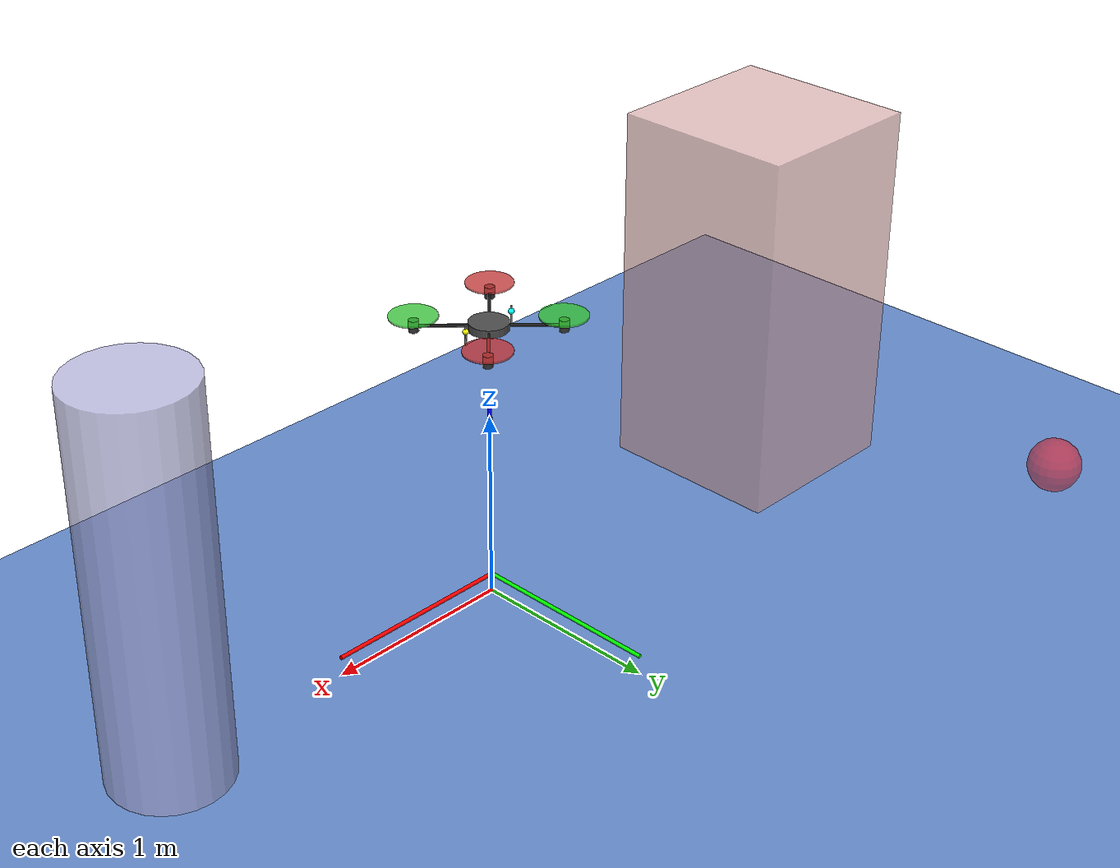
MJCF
<?xml version="1.0" ?>
<mujoco model="quadrotor">

  <!-- 仿真选项 -->
  <option timestep="0.005" iterations="50" tolerance="1e-10" cone="elliptic">
    <flag contact="enable" energy="enable"/>
  </option>

  <!-- 物理参数 -->
  <size nconmax="100" njmax="200"/>

  <!-- 资产定义 -->
  <asset>
    <!-- 纹理 -->
    <texture name="skybox" type="skybox" builtin="gradient" rgb1="0.6 0.8 1.0" rgb2="0.2 0.3 0.6"/>
    <texture name="ground" type="2d" builtin="checker" rgb1="0.8 0.9 0.8" rgb2="0.6 0.8 0.6" width="512" height="512"/>
    <texture name="metal" type="2d" builtin="flat" rgb1="0.5 0.5 0.5" rgb2="0.1 0.1 0.1"/>
    <texture name="propeller" type="2d" builtin="flat" rgb1="0.9 0.2 0.2" rgb2="0.5 0.1 0.1"/>

    <!-- 材质 -->
    <material name="sky" texture="skybox" texuniform="true"/>
    <material name="ground_mat" texture="ground" texuniform="true" texrepeat="10 10"/>
    <material name="metal_mat" texture="metal" shininess="0.5" specular="0.5"/>
    <material name="propeller_mat" texture="propeller" shininess="0.3" specular="0.2"/>
    <material name="red" rgba="0.8 0.2 0.2 1"/>
    <material name="green" rgba="0.2 0.8 0.2 1"/>
    <material name="blue" rgba="0.2 0.2 0.8 1"/>
    <material name="black" rgba="0.1 0.1 0.1 1"/>
    <material name="white" rgba="1 1 1 1"/>

    <!-- 网格 -->
    <mesh name="quad_body" file="quad_body.stl" scale="0.01 0.01 0.01"/>
    <mesh name="propeller_blade" file="propeller_blade.stl" scale="0.01 0.01 0.01"/>
  </asset>

  <!-- 世界定义 -->
  <worldbody>
    <!-- 光源 -->
    <light name="top_light" pos="0 0 10" dir="0 0 -1" directional="true" diffuse="0.8 0.8 0.8"/>
    <light name="front_light" pos="5 0 5" dir="-1 0 -1" directional="true" diffuse="0.5 0.5 0.5"/>

    <!-- 天空和地面 -->
    <geom name="sky" type="plane" pos="0 0 0" size="0 0 0" material="sky"/>
    <geom name="ground" type="plane" pos="0 0 0" size="20 20 0.1" material="ground_mat" condim="3" friction="1 0.005 0.0001"/>

    <!-- 参考坐标系 -->
    <geom name="origin_x" type="cylinder" fromto="0 0 0.1 1 0 0.1" size="0.01" rgba="1 0 0 1"/>
    <geom name="origin_y" type="cylinder" fromto="0 0 0.1 0 1 0.1" size="0.01" rgba="0 1 0 1"/>
    <geom name="origin_z" type="cylinder" fromto="0 0 0.1 0 0 1.1" size="0.01" rgba="0 0 1 1"/>

    <!-- 四旋翼无人机主体 -->
    <body name="quadrotor" pos="0 0 1.5" euler="0 0 0">
      <!-- 自由关节 (6自由度) -->
      <freejoint name="quad_free_joint"/>

      <!-- 主体框架 -->
      <geom name="center_body" type="cylinder" size="0.1 0.02" rgba="0.3 0.3 0.3 1" mass="0.3"/>
      <geom name="arm_front_right" type="capsule" fromto="0 0 0 0.25 0.25 0" size="0.008" rgba="0.1 0.1 0.1 1" mass="0.05"/>
      <geom name="arm_front_left" type="capsule" fromto="0 0 0 0.25 -0.25 0" size="0.008" rgba="0.1 0.1 0.1 1" mass="0.05"/>
      <geom name="arm_back_left" type="capsule" fromto="0 0 0 -0.25 -0.25 0" size="0.008" rgba="0.1 0.1 0.1 1" mass="0.05"/>
      <geom name="arm_back_right" type="capsule" fromto="0 0 0 -0.25 0.25 0" size="0.008" rgba="0.1 0.1 0.1 1" mass="0.05"/>

      <!-- 电机和旋翼 (前右) -->
      <body name="motor_front_right" pos="0.25 0.25 0">
        <geom name="motor_housing_front_right" type="cylinder" size="0.025 0.03" rgba="0.2 0.2 0.2 1" mass="0.05"/>

        <body name="rotor_front_right" pos="0 0 0.05">
          <joint name="rotor_front_right_joint" type="hinge" axis="0 0 1" limited="false"/>
          <geom name="propeller_front_right" type="cylinder" size="0.12 0.005" rgba="0.8 0.2 0.2 0.8" mass="0.02"/>
        </body>
      </body>

      <!-- 电机和旋翼 (前左) -->
      <body name="motor_front_left" pos="0.25 -0.25 0">
        <geom name="motor_housing_front_left" type="cylinder" size="0.025 0.03" rgba="0.2 0.2 0.2 1" mass="0.05"/>

        <body name="rotor_front_left" pos="0 0 0.05">
          <joint name="rotor_front_left_joint" type="hinge" axis="0 0 1" limited="false"/>
          <geom name="propeller_front_left" type="cylinder" size="0.12 0.005" rgba="0.2 0.8 0.2 0.8" mass="0.02"/>
        </body>
      </body>

      <!-- 电机和旋翼 (后左) -->
      <body name="motor_back_left" pos="-0.25 -0.25 0">
        <geom name="motor_housing_back_left" type="cylinder" size="0.025 0.03" rgba="0.2 0.2 0.2 1" mass="0.05"/>

        <body name="rotor_back_left" pos="0 0 0.05">
          <joint name="rotor_back_left_joint" type="hinge" axis="0 0 1" limited="false"/>
          <geom name="propeller_back_left" type="cylinder" size="0.12 0.005" rgba="0.8 0.2 0.2 0.8" mass="0.02"/>
        </body>
      </body>

      <!-- 电机和旋翼 (后右) -->
      <body name="motor_back_right" pos="-0.25 0.25 0">
        <geom name="motor_housing_back_right" type="cylinder" size="0.025 0.03" rgba="0.2 0.2 0.2 1" mass="0.05"/>

        <body name="rotor_back_right" pos="0 0 0.05">
          <joint name="rotor_back_right_joint" type="hinge" axis="0 0 1" limited="false"/>
          <geom name="propeller_back_right" type="cylinder" size="0.12 0.005" rgba="0.2 0.8 0.2 0.8" mass="0.02"/>
        </body>
      </body>

      <!-- 起落架 -->
      <geom name="landing_gear_front" type="cylinder" pos="0.15 0 0" size="0.005 0.05" rgba="0.5 0.5 0.5 1" mass="0.01"/>
      <geom name="landing_gear_back" type="cylinder" pos="-0.15 0 0" size="0.005 0.05" rgba="0.5 0.5 0.5 1" mass="0.01"/>

      <!-- 视觉标记 (用于方向识别) -->
      <geom name="front_marker" type="sphere" pos="0.15 0 0.02" size="0.015" rgba="1 1 0 1"/>
      <geom name="rear_marker" type="sphere" pos="-0.15 0 0.02" size="0.015" rgba="0 1 1 1"/>
    </body>

    <!-- 障碍物 (可选) -->
    <body name="obstacle1" pos="2 0 1">
      <geom name="obs1" type="cylinder" size="0.3 1" rgba="0.7 0.7 0.9 0.7"/>
    </body>

    <body name="obstacle2" pos="-2 0 1">
      <geom name="obs2" type="box" size="0.5 0.5 1" rgba="0.9 0.7 0.7 0.7"/>
    </body>

    <!-- 目标点 -->
    <body name="target" pos="0 3 2">
      <geom name="target_sphere" type="sphere" size="0.1" rgba="1 0 0 0.5" contype="0" conaffinity="0"/>
    </body>

  </worldbody>

  <!-- 执行器定义 -->
  <actuator>
    <!-- 电机控制 -->
    <motor name="motor_front_right" joint="rotor_front_right_joint" gear="50" ctrllimited="true" ctrlrange="0 1000"/>
    <motor name="motor_front_left" joint="rotor_front_left_joint" gear="50" ctrllimited="true" ctrlrange="0 1000"/>
    <motor name="motor_back_left" joint="rotor_back_left_joint" gear="50" ctrllimited="true" ctrlrange="0 1000"/>
    <motor name="motor_back_right" joint="rotor_back_right_joint" gear="50" ctrllimited="true" ctrlrange="0 1000"/>
  </actuator>

  <!-- 传感器定义 -->
  <sensor>
    <!-- 位置传感器 -->
    <framepos name="quad_position" objtype="body" objname="quadrotor"/>

    <!-- 姿态传感器 (四元数) -->
    <framequat name="quad_orientation" objtype="body" objname="quadrotor"/>

    <!-- 线速度传感器 -->
    <framelinvel name="quad_linear_velocity" objtype="body" objname="quadrotor"/>

    <!-- 角速度传感器 -->
    <frameangvel name="quad_angular_velocity" objtype="body" objname="quadrotor"/>

    <!-- 线加速度传感器 -->
    <framelinacc name="quad_linear_acceleration" objtype="body" objname="quadrotor"/>

    <!-- 旋翼转速传感器 -->
    <jointpos name="rotor_speed_front_right" joint="rotor_front_right_joint"/>
    <jointpos name="rotor_speed_front_left" joint="rotor_front_left_joint"/>
    <jointpos name="rotor_speed_back_left" joint="rotor_back_left_joint"/>
    <jointpos name="rotor_speed_back_right" joint="rotor_back_right_joint"/>

    <!-- 接触传感器 -->
    <touch name="touch_sensor" site="quadrotor_center"/>
  </sensor>

</mujoco>
